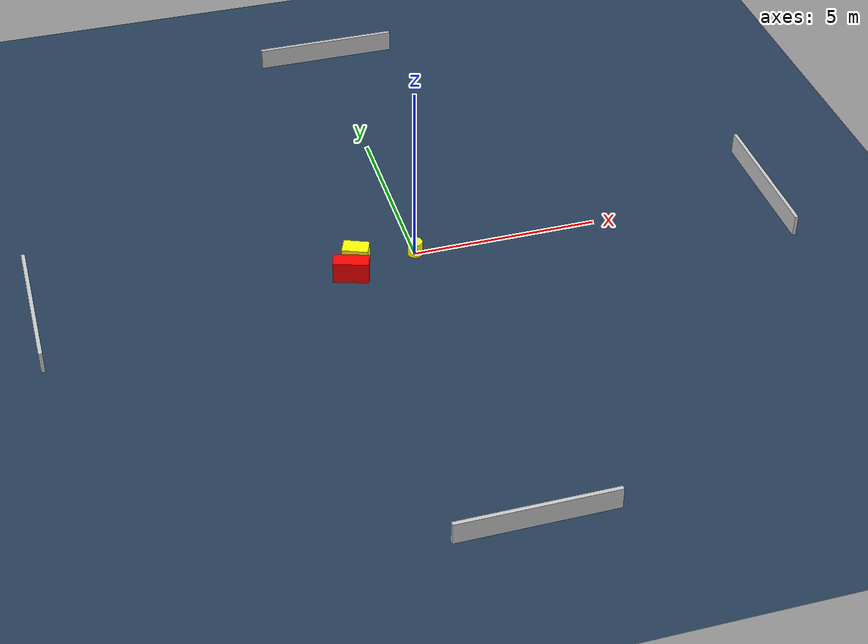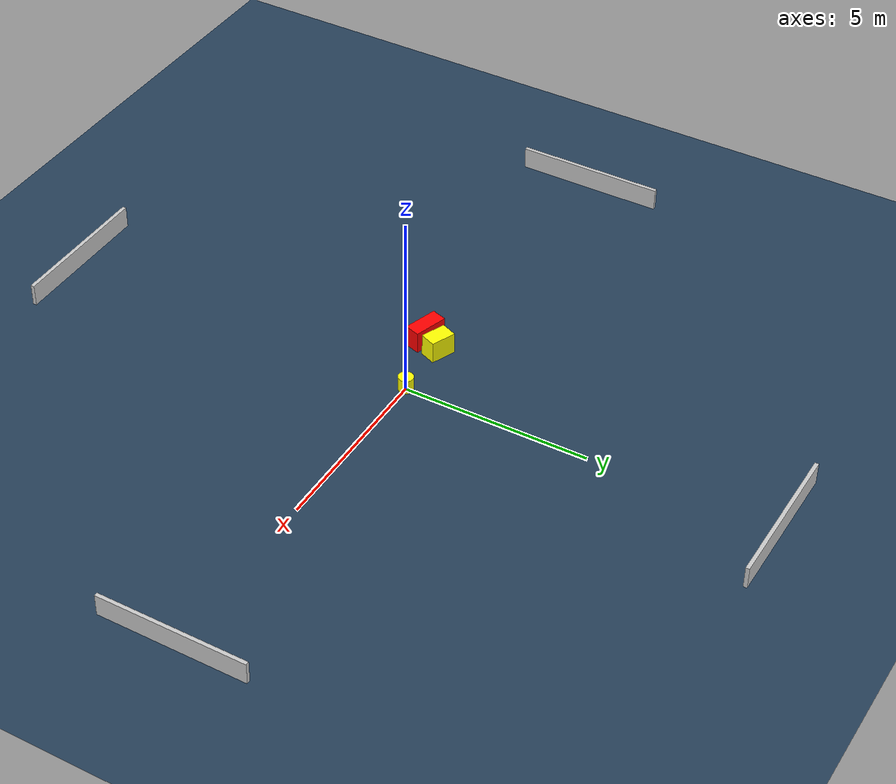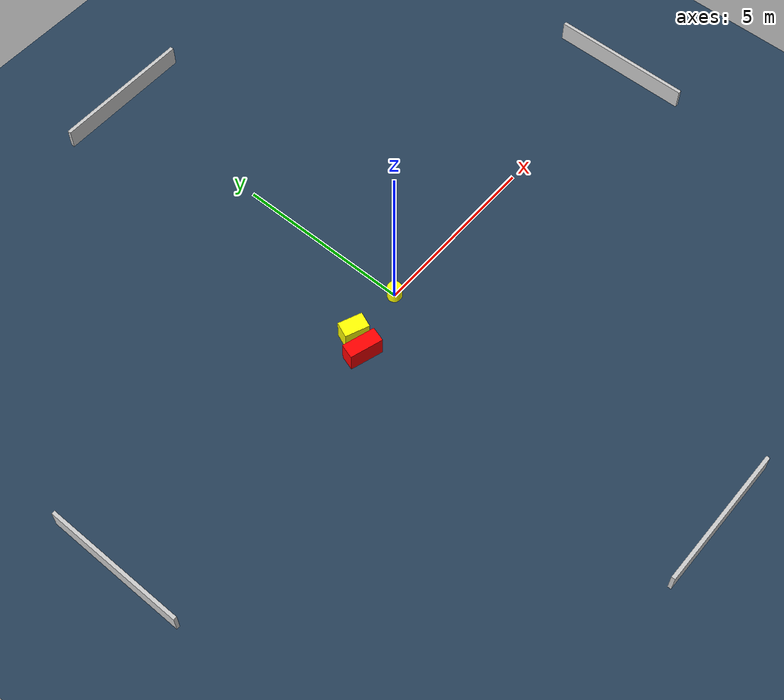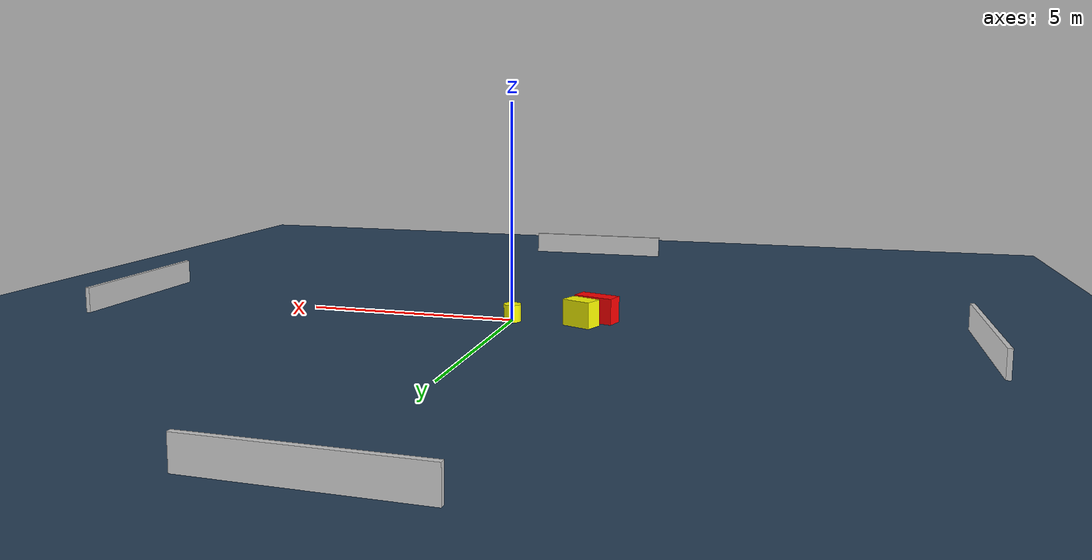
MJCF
<?xml version="1.0" ?>
<mujoco model="generated_environment">
  <option timestep="0.01" integrator="RK4" cone="elliptic"/>
  <default>
    <geom density="1"/>
  </default>
  <asset>
    <texture builtin="gradient" height="3072" name="skybox" rgb1="0.3 0.5 0.7" rgb2="0 0 0" type="skybox" width="512"/>
    <texture builtin="checker" height="300" name="groundplane" rgb1="0.2 0.3 0.4" rgb2="0.1 0.2 0.3" type="2d" width="300"/>
    <material name="groundplane" reflectance="0.2" texrepeat="5 5" texture="groundplane"/>
  </asset>
  <worldbody>
    <light dir="0 0 -1" directional="true" pos="0 0 1.5"/>
    <geom condim="3" friction="0.5 0.005 0.001" material="groundplane" name="floor" pos="0 0 0" size="0 0 0.05" type="plane"/>
    <body name="walls">
      <geom name="wall_1" condim="4" pos="-10.0 0.0 0.3" rgba="0.800000011920929 0.800000011920929 0.800000011920929 1.0" size="0.05 2.0 0.3" type="box"/>
      <geom name="wall_2" condim="4" pos="10.0 0.0 0.3" rgba="0.800000011920929 0.800000011920929 0.800000011920929 1.0" size="0.05 2.0 0.3" type="box"/>
      <geom name="wall_3" condim="4" pos="0.0 -10.0 0.3" rgba="0.800000011920929 0.800000011920929 0.800000011920929 1.0" size="2.0 0.05 0.3" type="box"/>
      <geom name="wall_4" condim="4" pos="0.0 10.0 0.3" rgba="0.800000011920929 0.800000011920929 0.800000011920929 1.0" size="2.0 0.05 0.3" type="box"/>
    </body>
    <body name="robot">
      <joint name="joint_x" type="slide" pos="0 0 0" axis="1 0 0"/>
      <joint name="joint_y" type="slide" pos="0 0 0" axis="0 1 0"/>
      <geom name="robot" type="cylinder" pos="0.0 0.0 0.2" size="0.2 0.2 0.0" mass="5.0" friction="1.0 0.005 0.0001" condim="4" rgba="1.0 1.0 0.0 1.0"/>
    </body>
    <body name="obstacle_1_movable">
      <geom name="obstacle_1_movable" condim="4" pos="-1.6106469382610873 -0.009043250274836365 0.3" euler="0 0 247.5322174603682" friction="0.0 0.005 0.001" rgba="1.0 1.0 0.0 1.0" size="0.22151277067333167 0.3432723599437528 0.3" type="box" mass="0.1"/>
      <joint type="free"/>
    </body>
    <body name="obstacle_2_static">
      <geom name="obstacle_2_static" condim="4" pos="-1.8650870856282349 -0.5237292511690744 0.3" euler="0 0 252.86824984944286" friction="0.0 0.005 0.001" rgba="1.0 0.0 0.0 1.0" size="0.20733161994862764 0.4692280388223623 0.3" type="box"/>
    </body>
  </worldbody>
  <actuator>
    <motor name="actuator_x" joint="joint_x" gear="1" ctrlrange="-1 1"/>
    <motor name="actuator_y" joint="joint_y" gear="1" ctrlrange="-1 1"/>
  </actuator>
</mujoco>
